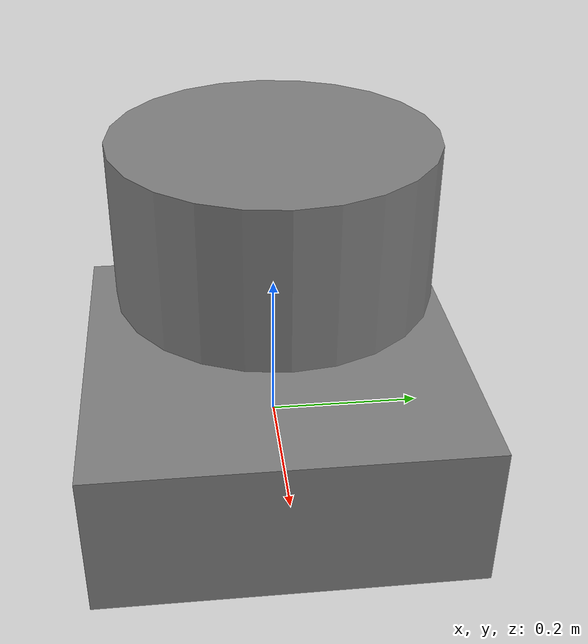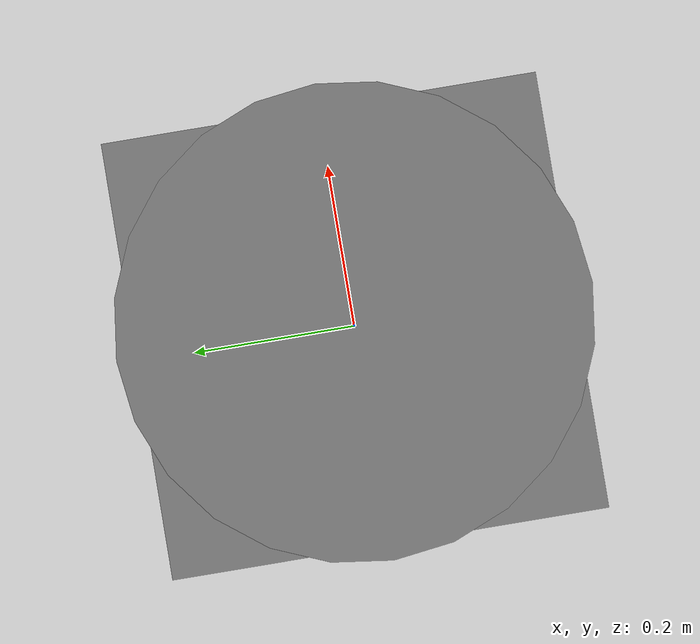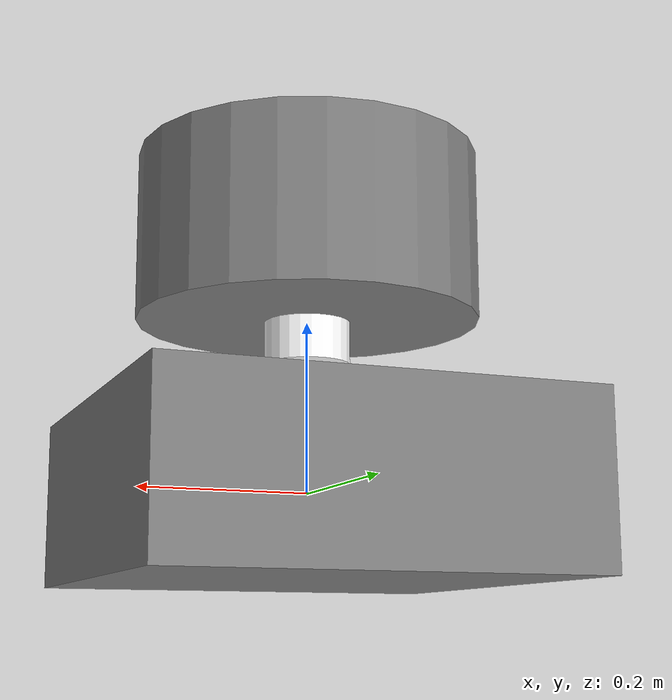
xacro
<?xml version="1.0"?>
<robot name="robot" xmlns:xacro="http://ros.org/wiki/xacro">

  <!-- Define materials -->
  <material name="grey">
    <color rgba="0.5 0.5 0.5 1"/>
  </material>
  <material name="white">
    <color rgba="1 1 1 1"/>
  </material>

  <!-- Define base_link -->
  <link name="base_link">
    <visual>
      <origin xyz="0 0 0" rpy="0 0 0"/>
      <geometry>
        <box size="0.5 0.5 0.2"/>
      </geometry>
      <material name="grey"/>
    </visual>
  </link>

  <!-- Define wheel -->
  <xacro:macro name="wheel" params="name">
    <link name="${name}_link">
      <visual>
        <origin xyz="0 0 0" rpy="0 0 0"/>
        <geometry>
          <cylinder length="0.05" radius="0.05"/>
        </geometry>
        <material name="white"/>
      </visual>
    </link>
    <joint name="${name}_joint" type="continuous">
      <origin xyz="0 0 0.025"/>
      <parent link="base_link"/>
      <child link="${name}_link"/>
      <axis xyz="0 0 1"/>
    </joint>
  </xacro:macro>

  <!-- Define mecanum wheels -->
  <xacro:wheel name="front_left_wheel"/>
  <xacro:wheel name="front_right_wheel"/>
  <xacro:wheel name="rear_left_wheel"/>
  <xacro:wheel name="rear_right_wheel"/>

  <!-- Connect wheels with motors -->
  <transmission name="front_left_wheel_trans">
    <type>transmission_interface/SimpleTransmission</type>
    <joint name="front_left_wheel_joint">
      <hardwareInterface>hardware_interface/VelocityJointInterface</hardwareInterface>
    </joint>
    <actuator name="front_left_motor">
      <hardwareInterface>hardware_interface/VelocityJointInterface</hardwareInterface>
      <mechanicalReduction>8</mechanicalReduction>
    </actuator>
  </transmission>

  <transmission name="front_right_wheel_trans">
    <type>transmission_interface/SimpleTransmission</type>
    <joint name="front_right_wheel_joint">
      <hardwareInterface>hardware_interface/VelocityJointInterface</hardwareInterface>
    </joint>
    <actuator name="front_right_motor">
      <hardwareInterface>hardware_interface/VelocityJointInterface</hardwareInterface>
      <mechanicalReduction>8</mechanicalReduction>
    </actuator>
  </transmission>

  <transmission name="rear_left_wheel_trans">
    <type>transmission_interface/SimpleTransmission</type>
    <joint name="rear_left_wheel_joint">
      <hardwareInterface>hardware_interface/VelocityJointInterface</hardwareInterface>
    </joint>
    <actuator name="rear_left_motor">
      <hardwareInterface>hardware_interface/VelocityJointInterface</hardwareInterface>
      <mechanicalReduction>8</mechanicalReduction>
    </actuator>
  </transmission>

  <transmission name="rear_right_wheel_trans">
    <type>transmission_interface/SimpleTransmission</type>
    <joint name="rear_right_wheel_joint">
      <hardwareInterface>hardware_interface/VelocityJointInterface</hardwareInterface>
    </joint>
    <actuator name="rear_right_motor">
      <hardwareInterface>hardware_interface/VelocityJointInterface</hardwareInterface>
      <mechanicalReduction>8</mechanicalReduction>
    </actuator>
  </transmission>
  <!-- Similar for other wheels -->

  <!-- Define second base -->
  <link name="second_base">
    <visual>
      <origin xyz="0 0 0.2" rpy="0 0 0"/>
      <geometry>
        <cylinder length="0.2" radius="0.2"/>
      </geometry>
      <material name="grey"/>
    </visual>
  </link>

  <!-- Connect second base with lidar -->
  <joint name="lidar_joint" type="fixed">
    <origin xyz="0 0 0.1" rpy="0 0 0"/>
    <parent link="base_link"/>
    <child link="second_base"/>
  </joint>

  <!-- Define lidar -->
  <link name="lidar">
    <visual>
      <origin xyz="0 0 0.1" rpy="0 0 0"/>
      <geometry>
        <cylinder length="0.1" radius="0.05"/>
      </geometry>
      <material name="white"/>
    </visual>
  </link>

  <!-- Connect lidar -->
  <joint name="lidar_mount" type="fixed">
    <origin xyz="0 0 0" rpy="0 0 0"/>
    <parent link="second_base"/>
    <child link="lidar"/>
  </joint>

</robot>
